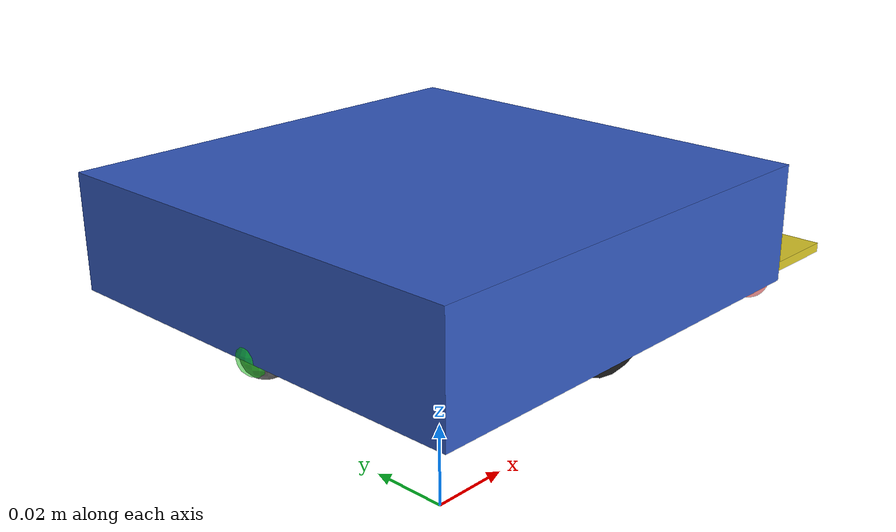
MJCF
<mujoco model="sumobot">
  <!--
    SumoBot robot: 10x10cm chassis, 500g total, N20 motors, differential drive.
    Coordinate frame: X=forward, Y=left, Z=up.
    Chassis bottom at z=0.065 (arena top=0.05, wheel radius=0.015).
  -->

  <default>
    <joint damping="0.0001" armature="0.00001"/>
    <geom condim="4" solimp="0.95 0.99 0.001" solref="0.004 1"/>
  </default>

  <asset>
    <material name="chassis_blue" rgba="0.2 0.35 0.75 1"/>
    <material name="wedge_yellow" rgba="0.85 0.78 0.15 1"/>
    <material name="wheel_black" rgba="0.1 0.1 0.1 1"/>
  </asset>

  <worldbody>
    <body name="bot_chassis" pos="0 0 0.065">
      <freejoint name="bot_root"/>

      <!-- Chassis inertial: CoG slightly rear and low (battery placement) -->
      <inertial pos="-0.008 0 -0.004" mass="0.47"
                diaginertia="0.000396 0.000396 0.000784"/>

      <!-- Main body: 10x10x2.5cm box -->
      <geom name="bot_body" type="box" size="0.05 0.05 0.0125"
            material="chassis_blue" friction="0.4 0.005 0.001" mass="0"/>

      <!-- Front wedge: angled blade for getting under opponent -->
      <geom name="bot_wedge" type="box" size="0.018 0.048 0.001"
            pos="0.052 0 -0.011" euler="0 0.224 0"
            material="wedge_yellow" friction="0.3 0.003 0.001" mass="0.01"/>

      <!-- Rear skid (prevents tipping backward) -->
      <geom name="bot_skid" type="sphere" size="0.005"
            pos="-0.045 0 -0.0125" friction="0.2 0.001 0.001" mass="0.005"/>

      <!-- ===== SENSOR SITES ===== -->
      <!-- Laser origins (front face) -->
      <site name="bot_laser_center" pos="0.05 0 0" euler="0 0 0" size="0.003"/>
      <site name="bot_laser_left"   pos="0.05 -0.025 0" euler="0 0 -0.526" size="0.003"/>
      <site name="bot_laser_right"  pos="0.05  0.025 0" euler="0 0  0.526" size="0.003"/>

      <!-- Line sensor positions (bottom face) -->
      <site name="bot_line_fl" pos="0.047 -0.045 -0.0125" size="0.004" rgba="1 0 0 0.5"/>
      <site name="bot_line_fr" pos="0.047  0.045 -0.0125" size="0.004" rgba="1 0 0 0.5"/>
      <site name="bot_line_r"  pos="-0.047 0     -0.0125" size="0.004" rgba="0 1 0 0.5"/>

      <!-- IMU site (center of chassis) -->
      <site name="bot_imu" pos="0 0 0" size="0.002"/>

      <!-- ===== WHEELS ===== -->
      <!-- Left wheel (Y-negative side) -->
      <body name="bot_wheel_L" pos="0 -0.04 -0.003">
        <joint name="bot_wheel_L_joint" type="hinge" axis="0 1 0"/>
        <geom name="bot_wheel_L_geom" type="cylinder" size="0.015 0.005"
              euler="90 0 0" material="wheel_black"
              friction="0.6 0.008 0.002" mass="0.008" condim="4"/>
      </body>

      <!-- Right wheel (Y-positive side) -->
      <body name="bot_wheel_R" pos="0 0.04 -0.003">
        <joint name="bot_wheel_R_joint" type="hinge" axis="0 1 0"/>
        <geom name="bot_wheel_R_geom" type="cylinder" size="0.015 0.005"
              euler="90 0 0" material="wheel_black"
              friction="0.6 0.008 0.002" mass="0.008" condim="4"/>
      </body>
    </body>
  </worldbody>

  <!-- Actuators: torque-controlled motors -->
  <actuator>
    <motor name="bot_motor_L" joint="bot_wheel_L_joint"
           ctrlrange="-0.05 0.05" ctrllimited="true"/>
    <motor name="bot_motor_R" joint="bot_wheel_R_joint"
           ctrlrange="-0.05 0.05" ctrllimited="true"/>
  </actuator>

  <!-- Sensors -->
  <sensor>
    <accelerometer name="bot_accel" site="bot_imu"/>
    <gyro name="bot_gyro" site="bot_imu"/>
  </sensor>
</mujoco>
